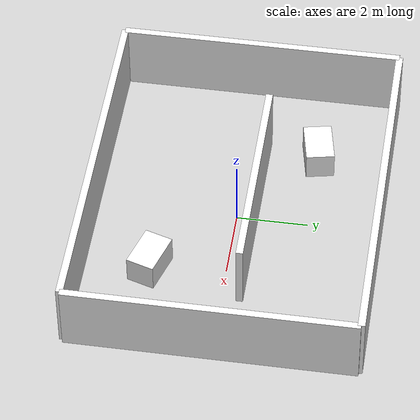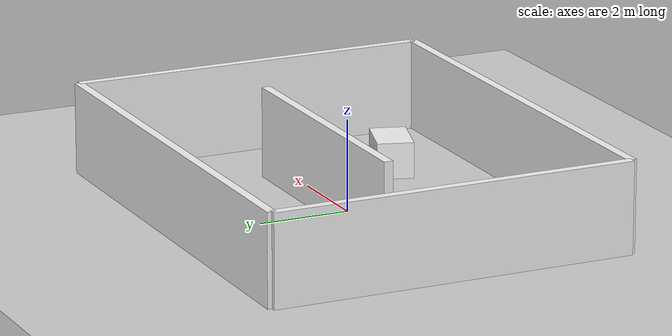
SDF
<?xml version="1.0" ?>
<sdf version="1.9">
  <world name="office">
    <plugin filename="gz-sim-physics-system" name="gz::sim::systems::Physics"/>
    <plugin filename="gz-sim-user-commands-system" name="gz::sim::systems::UserCommands"/>
    <plugin filename="gz-sim-scene-broadcaster-system" name="gz::sim::systems::SceneBroadcaster"/>
    <plugin filename="gz-sim-sensors-system" name="gz::sim::systems::Sensors">
      <render_engine>ogre2</render_engine>
    </plugin>

    <scene>
      <ambient>0.9 0.9 0.9 1</ambient>
      <background>0.8 0.8 0.8 1</background>
    </scene>

    <physics name="default_physics" default="true" type="ode">
      <max_step_size>0.001</max_step_size>
      <real_time_factor>1.0</real_time_factor>
    </physics>

    <light type="directional" name="sun">
      <cast_shadows>true</cast_shadows>
      <pose>0 0 10 0 0 0</pose>
      <diffuse>1.0 1.0 1.0 1</diffuse>
      <specular>0.4 0.4 0.4 1</specular>
      <direction>-0.5 0.1 -0.9</direction>
    </light>

    <model name="ground_plane">
      <static>true</static>
      <link name="link">
        <collision name="collision">
          <geometry>
            <plane>
              <normal>0 0 1</normal>
              <size>100 100</size>
            </plane>
          </geometry>
        </collision>
        <visual name="visual">
          <geometry>
            <plane>
              <normal>0 0 1</normal>
              <size>100 100</size>
            </plane>
          </geometry>
        </visual>
      </link>
    </model>

    <model name="office_wall_n">
      <static>true</static>
      <pose>0 4 1 0 0 0</pose>
      <link name="link">
        <collision name="collision"><geometry><box><size>10 0.2 2</size></box></geometry></collision>
        <visual name="visual">
          <geometry><box><size>10 0.2 2</size></box></geometry>
          <material>
            <ambient>0.95 0.95 0.95 1</ambient>
            <diffuse>0.95 0.95 0.95 1</diffuse>
            <specular>0.2 0.2 0.2 1</specular>
          </material>
        </visual>
      </link>
    </model>

    <model name="office_wall_s">
      <static>true</static>
      <pose>0 -4 1 0 0 0</pose>
      <link name="link">
        <collision name="collision"><geometry><box><size>10 0.2 2</size></box></geometry></collision>
        <visual name="visual">
          <geometry><box><size>10 0.2 2</size></box></geometry>
          <material>
            <ambient>0.95 0.95 0.95 1</ambient>
            <diffuse>0.95 0.95 0.95 1</diffuse>
            <specular>0.2 0.2 0.2 1</specular>
          </material>
        </visual>
      </link>
    </model>

    <model name="office_wall_e">
      <static>true</static>
      <pose>5 0 1 0 0 0</pose>
      <link name="link">
        <collision name="collision"><geometry><box><size>0.2 8 2</size></box></geometry></collision>
        <visual name="visual">
          <geometry><box><size>0.2 8 2</size></box></geometry>
          <material>
            <ambient>0.95 0.95 0.95 1</ambient>
            <diffuse>0.95 0.95 0.95 1</diffuse>
            <specular>0.2 0.2 0.2 1</specular>
          </material>
        </visual>
      </link>
    </model>

    <model name="office_wall_w">
      <static>true</static>
      <pose>-5 0 1 0 0 0</pose>
      <link name="link">
        <collision name="collision"><geometry><box><size>0.2 8 2</size></box></geometry></collision>
        <visual name="visual">
          <geometry><box><size>0.2 8 2</size></box></geometry>
          <material>
            <ambient>0.95 0.95 0.95 1</ambient>
            <diffuse>0.95 0.95 0.95 1</diffuse>
            <specular>0.2 0.2 0.2 1</specular>
          </material>
        </visual>
      </link>
    </model>

    <model name="office_partition">
      <static>true</static>
      <pose>0 0.5 1 0 0 0</pose>
      <link name="link">
        <collision name="collision"><geometry><box><size>6 0.2 2</size></box></geometry></collision>
        <visual name="visual">
          <geometry><box><size>6 0.2 2</size></box></geometry>
          <material>
            <ambient>0.95 0.95 0.95 1</ambient>
            <diffuse>0.95 0.95 0.95 1</diffuse>
            <specular>0.2 0.2 0.2 1</specular>
          </material>
        </visual>
      </link>
    </model>

    <model name="desk_1">
      <static>true</static>
      <pose>-2.5 2.0 0.4 0 0 0.2</pose>
      <link name="link">
        <collision name="collision"><geometry><box><size>1.2 0.8 0.8</size></box></geometry></collision>
        <visual name="visual">
          <geometry><box><size>1.2 0.8 0.8</size></box></geometry>
          <material>
            <ambient>0.95 0.95 0.95 1</ambient>
            <diffuse>0.95 0.95 0.95 1</diffuse>
            <specular>0.2 0.2 0.2 1</specular>
          </material>
        </visual>
      </link>
    </model>

    <model name="desk_2">
      <static>true</static>
      <pose>2.2 -2.1 0.4 0 0 -0.3</pose>
      <link name="link">
        <collision name="collision"><geometry><box><size>1.2 0.8 0.8</size></box></geometry></collision>
        <visual name="visual">
          <geometry><box><size>1.2 0.8 0.8</size></box></geometry>
          <material>
            <ambient>0.95 0.95 0.95 1</ambient>
            <diffuse>0.95 0.95 0.95 1</diffuse>
            <specular>0.2 0.2 0.2 1</specular>
          </material>
        </visual>
      </link>
    </model>
  </world>
</sdf>
